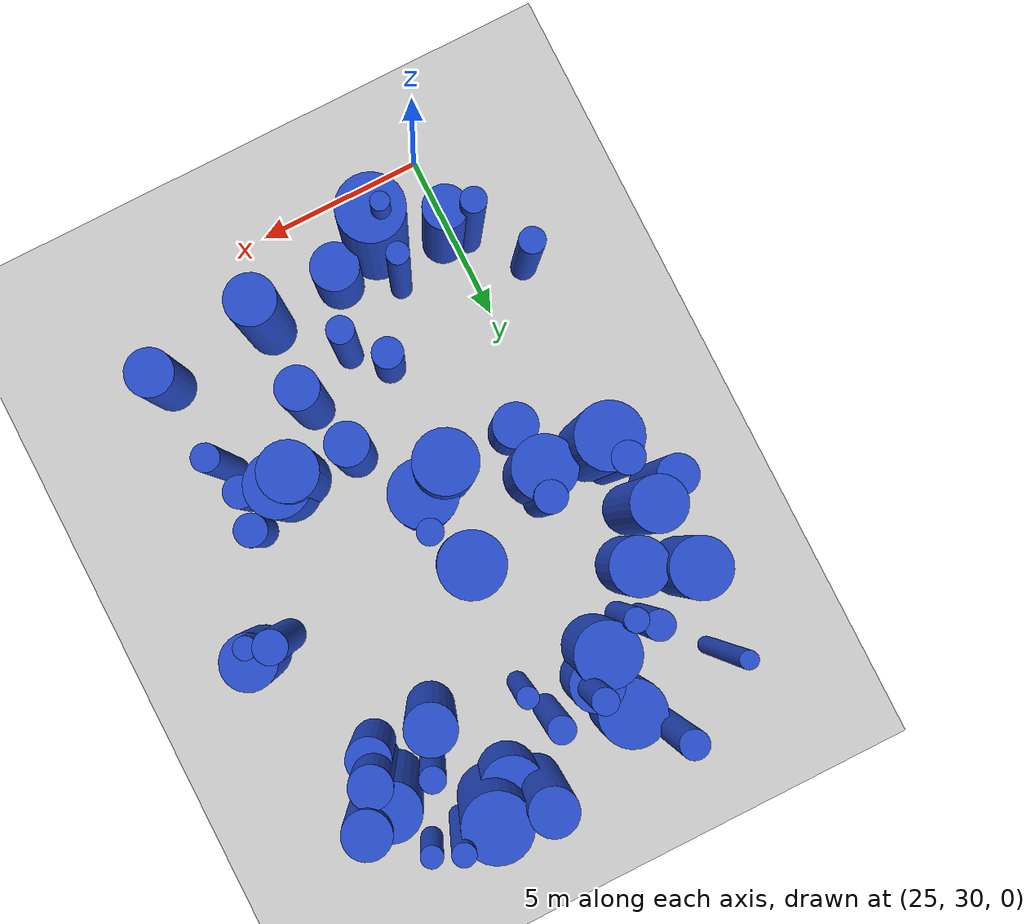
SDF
<sdf version="1.6">
 <world name="default">
  <model name="ground_plane">
   <static>1</static>
   <link name="link">
    <collision name="collision">
     <geometry><plane><normal>0 0 1</normal><size>100 100</size></plane></geometry>
     <surface><friction><ode><mu>100</mu><mu2>50</mu2></ode></friction></surface>
    </collision>
    <visual name="visual">
     <cast_shadows>0</cast_shadows>
     <geometry><plane><normal>0 0 1</normal><size>100 100</size></plane></geometry>
     <material>
      <script><uri>file://media/materials/scripts/gazebo.material</uri><name>Gazebo/Grey</name></script>
     </material>
    </visual>
   </link>
  </model>
  <model name="1">
   <static>0</static>
   <link name="link">
    <inertial>
     <mass>2</mass>
     <inertia><ixx>3.78778</ixx><ixy>0</ixy><ixz>0</ixz><iyy>3.78778</iyy><iyz>0</iyz><izz>0.35692</izz></inertia>
    </inertial>
    <collision name="collision">
     <geometry><cylinder><length>4.65359</length><radius>0.597428</radius></cylinder></geometry>
     <surface><contact><collide_without_contact>1</collide_without_contact></contact></surface>
    </collision>
    <visual name="visual">
     <geometry><cylinder><length>4.65359</length><radius>0.597428</radius></cylinder></geometry>
     <material>
      <script><uri>file://media/materials/scripts/gazebo.material</uri><name>Gazebo/Blue</name></script>
     </material>
    </visual>
    <gravity>0</gravity>
   </link>
   <pose>30.9437 35.2466 2.3268 0 -0 0</pose>
  </model>
  <model name="11">
   <static>0</static>
   <link name="link">
    <inertial>
     <mass>2</mass>
     <inertia><ixx>1.8509</ixx><ixy>0</ixy><ixz>0</ixz><iyy>1.8509</iyy><iyz>0</iyz><izz>0.122377</izz></inertia>
    </inertial>
    <collision name="collision">
     <geometry><cylinder><length>3.27693</length><radius>0.349825</radius></cylinder></geometry>
     <surface><contact><collide_without_contact>1</collide_without_contact></contact></surface>
    </collision>
    <visual name="visual">
     <geometry><cylinder><length>3.27693</length><radius>0.349825</radius></cylinder></geometry>
     <material>
      <script><uri>file://media/materials/scripts/gazebo.material</uri><name>Gazebo/Blue</name></script>
     </material>
    </visual>
    <gravity>0</gravity>
   </link>
   <pose>25.7147 44.6037 1.63846 0 -0 0</pose>
  </model>
  <model name="14">
   <static>0</static>
   <link name="link">
    <inertial>
     <mass>2</mass>
     <inertia><ixx>3.82852</ixx><ixy>0</ixy><ixz>0</ixz><iyy>3.82852</iyy><iyz>0</iyz><izz>0.125875</izz></inertia>
    </inertial>
    <collision name="collision">
     <geometry><cylinder><length>4.75326</length><radius>0.354788</radius></cylinder></geometry>
     <surface><contact><collide_without_contact>1</collide_without_contact></contact></surface>
    </collision>
    <visual name="visual">
     <geometry><cylinder><length>4.75326</length><radius>0.354788</radius></cylinder></geometry>
     <material>
      <script><uri>file://media/materials/scripts/gazebo.material</uri><name>Gazebo/Blue</name></script>
     </material>
    </visual>
    <gravity>0</gravity>
   </link>
   <pose>32.3125 45.6475 2.37663 0 -0 0</pose>
  </model>
  <model name="17">
   <static>0</static>
   <link name="link">
    <inertial>
     <mass>2</mass>
     <inertia><ixx>4.11336</ixx><ixy>0</ixy><ixz>0</ixz><iyy>4.11336</iyy><iyz>0</iyz><izz>0.443854</izz></inertia>
    </inertial>
    <collision name="collision">
     <geometry><cylinder><length>4.83204</length><radius>0.666223</radius></cylinder></geometry>
     <surface><contact><collide_without_contact>1</collide_without_contact></contact></surface>
    </collision>
    <visual name="visual">
     <geometry><cylinder><length>4.83204</length><radius>0.666223</radius></cylinder></geometry>
     <material>
      <script><uri>file://media/materials/scripts/gazebo.material</uri><name>Gazebo/Blue</name></script>
     </material>
    </visual>
    <gravity>0</gravity>
   </link>
   <pose>34.3973 46.1199 2.41602 0 -0 0</pose>
  </model>
  <model name="22">
   <static>0</static>
   <link name="link">
    <inertial>
     <mass>2</mass>
     <inertia><ixx>1.74504</ixx><ixy>0</ixy><ixz>0</ixz><iyy>1.74504</iyy><iyz>0</iyz><izz>0.480682</izz></inertia>
    </inertial>
    <collision name="collision">
     <geometry><cylinder><length>3.00469</length><radius>0.693313</radius></cylinder></geometry>
     <surface><contact><collide_without_contact>1</collide_without_contact></contact></surface>
    </collision>
    <visual name="visual">
     <geometry><cylinder><length>3.00469</length><radius>0.693313</radius></cylinder></geometry>
     <material>
      <script><uri>file://media/materials/scripts/gazebo.material</uri><name>Gazebo/Blue</name></script>
     </material>
    </visual>
    <gravity>0</gravity>
   </link>
   <pose>34.3942 32.773 1.50235 0 -0 0</pose>
  </model>
  <model name="25">
   <static>0</static>
   <link name="link">
    <inertial>
     <mass>2</mass>
     <inertia><ixx>2.7316</ixx><ixy>0</ixy><ixz>0</ixz><iyy>2.7316</iyy><iyz>0</iyz><izz>0.105322</izz></inertia>
    </inertial>
    <collision name="collision">
     <geometry><cylinder><length>4.00919</length><radius>0.324534</radius></cylinder></geometry>
     <surface><contact><collide_without_contact>1</collide_without_contact></contact></surface>
    </collision>
    <visual name="visual">
     <geometry><cylinder><length>4.00919</length><radius>0.324534</radius></cylinder></geometry>
     <material>
      <script><uri>file://media/materials/scripts/gazebo.material</uri><name>Gazebo/Blue</name></script>
     </material>
    </visual>
    <gravity>0</gravity>
   </link>
   <pose>35.1952 40.577 2.0046 0 -0 0</pose>
  </model>
  <model name="35">
   <static>0</static>
   <link name="link">
    <inertial>
     <mass>2</mass>
     <inertia><ixx>3.99285</ixx><ixy>0</ixy><ixz>0</ixz><iyy>3.99285</iyy><iyz>0</iyz><izz>0.131146</izz></inertia>
    </inertial>
    <collision name="collision">
     <geometry><cylinder><length>4.85424</length><radius>0.36214</radius></cylinder></geometry>
     <surface><contact><collide_without_contact>1</collide_without_contact></contact></surface>
    </collision>
    <visual name="visual">
     <geometry><cylinder><length>4.85424</length><radius>0.36214</radius></cylinder></geometry>
     <material>
      <script><uri>file://media/materials/scripts/gazebo.material</uri><name>Gazebo/Blue</name></script>
     </material>
    </visual>
    <gravity>0</gravity>
   </link>
   <pose>27.5562 45.8459 2.42712 0 -0 0</pose>
  </model>
  <model name="39">
   <static>0</static>
   <link name="link">
    <inertial>
     <mass>2</mass>
     <inertia><ixx>1.87707</ixx><ixy>0</ixy><ixz>0</ixz><iyy>1.87707</iyy><iyz>0</iyz><izz>0.143575</izz></inertia>
    </inertial>
    <collision name="collision">
     <geometry><cylinder><length>3.29115</length><radius>0.378913</radius></cylinder></geometry>
     <surface><contact><collide_without_contact>1</collide_without_contact></contact></surface>
    </collision>
    <visual name="visual">
     <geometry><cylinder><length>3.29115</length><radius>0.378913</radius></cylinder></geometry>
     <material>
      <script><uri>file://media/materials/scripts/gazebo.material</uri><name>Gazebo/Blue</name></script>
     </material>
    </visual>
    <gravity>0</gravity>
   </link>
   <pose>29.5533 40.0496 1.64558 0 -0 0</pose>
  </model>
  <model name="42">
   <static>0</static>
   <link name="link">
    <inertial>
     <mass>2</mass>
     <inertia><ixx>3.1498</ixx><ixy>0</ixy><ixz>0</ixz><iyy>3.1498</iyy><iyz>0</iyz><izz>0.22395</izz></inertia>
    </inertial>
    <collision name="collision">
     <geometry><cylinder><length>4.26931</length><radius>0.473233</radius></cylinder></geometry>
     <surface><contact><collide_without_contact>1</collide_without_contact></contact></surface>
    </collision>
    <visual name="visual">
     <geometry><cylinder><length>4.26931</length><radius>0.473233</radius></cylinder></geometry>
     <material>
      <script><uri>file://media/materials/scripts/gazebo.material</uri><name>Gazebo/Blue</name></script>
     </material>
    </visual>
    <gravity>0</gravity>
   </link>
   <pose>34.5611 40.8487 2.13465 0 -0 0</pose>
  </model>
  <model name="46">
   <static>0</static>
   <link name="link">
    <inertial>
     <mass>2</mass>
     <inertia><ixx>1.08337</ixx><ixy>0</ixy><ixz>0</ixz><iyy>1.08337</iyy><iyz>0</iyz><izz>0.431223</izz></inertia>
    </inertial>
    <collision name="collision">
     <geometry><cylinder><length>2.28179</length><radius>0.656676</radius></cylinder></geometry>
     <surface><contact><collide_without_contact>1</collide_without_contact></contact></surface>
    </collision>
    <visual name="visual">
     <geometry><cylinder><length>2.28179</length><radius>0.656676</radius></cylinder></geometry>
     <material>
      <script><uri>file://media/materials/scripts/gazebo.material</uri><name>Gazebo/Blue</name></script>
     </material>
    </visual>
    <gravity>0</gravity>
   </link>
   <pose>26.1184 38.4737 1.14089 0 -0 0</pose>
  </model>
  <model name="51">
   <static>0</static>
   <link name="link">
    <inertial>
     <mass>2</mass>
     <inertia><ixx>2.12897</ixx><ixy>0</ixy><ixz>0</ixz><iyy>2.12897</iyy><iyz>0</iyz><izz>0.215485</izz></inertia>
    </inertial>
    <collision name="collision">
     <geometry><cylinder><length>3.48244</length><radius>0.464204</radius></cylinder></geometry>
     <surface><contact><collide_without_contact>1</collide_without_contact></contact></surface>
    </collision>
    <visual name="visual">
     <geometry><cylinder><length>3.48244</length><radius>0.464204</radius></cylinder></geometry>
     <material>
      <script><uri>file://media/materials/scripts/gazebo.material</uri><name>Gazebo/Blue</name></script>
     </material>
    </visual>
    <gravity>0</gravity>
   </link>
   <pose>26.2759 40.6636 1.74122 0 -0 0</pose>
  </model>
  <model name="67">
   <static>0</static>
   <link name="link">
    <inertial>
     <mass>2</mass>
     <inertia><ixx>3.78893</ixx><ixy>0</ixy><ixz>0</ixz><iyy>3.78893</iyy><iyz>0</iyz><izz>0.594463</izz></inertia>
    </inertial>
    <collision name="collision">
     <geometry><cylinder><length>4.57713</length><radius>0.771014</radius></cylinder></geometry>
     <surface><contact><collide_without_contact>1</collide_without_contact></contact></surface>
    </collision>
    <visual name="visual">
     <geometry><cylinder><length>4.57713</length><radius>0.771014</radius></cylinder></geometry>
     <material>
      <script><uri>file://media/materials/scripts/gazebo.material</uri><name>Gazebo/Blue</name></script>
     </material>
    </visual>
    <gravity>0</gravity>
   </link>
   <pose>24.0154 42.051 2.28857 0 -0 0</pose>
  </model>
  <model name="71">
   <static>0</static>
   <link name="link">
    <inertial>
     <mass>2</mass>
     <inertia><ixx>3.39926</ixx><ixy>0</ixy><ixz>0</ixz><iyy>3.39926</iyy><iyz>0</iyz><izz>0.20815</izz></inertia>
    </inertial>
    <collision name="collision">
     <geometry><cylinder><length>4.44647</length><radius>0.456234</radius></cylinder></geometry>
     <surface><contact><collide_without_contact>1</collide_without_contact></contact></surface>
    </collision>
    <visual name="visual">
     <geometry><cylinder><length>4.44647</length><radius>0.456234</radius></cylinder></geometry>
     <material>
      <script><uri>file://media/materials/scripts/gazebo.material</uri><name>Gazebo/Blue</name></script>
     </material>
    </visual>
    <gravity>0</gravity>
   </link>
   <pose>24.1535 40.6533 2.22323 0 -0 0</pose>
  </model>
  <model name="74">
   <static>0</static>
   <link name="link">
    <inertial>
     <mass>2</mass>
     <inertia><ixx>2.79138</ixx><ixy>0</ixy><ixz>0</ixz><iyy>2.79138</iyy><iyz>0</iyz><izz>0.102118</izz></inertia>
    </inertial>
    <collision name="collision">
     <geometry><cylinder><length>4.05487</length><radius>0.319558</radius></cylinder></geometry>
     <surface><contact><collide_without_contact>1</collide_without_contact></contact></surface>
    </collision>
    <visual name="visual">
     <geometry><cylinder><length>4.05487</length><radius>0.319558</radius></cylinder></geometry>
     <material>
      <script><uri>file://media/materials/scripts/gazebo.material</uri><name>Gazebo/Blue</name></script>
     </material>
    </visual>
    <gravity>0</gravity>
   </link>
   <pose>27.024 33.1538 2.02743 0 -0 0</pose>
  </model>
  <model name="82">
   <static>0</static>
   <link name="link">
    <inertial>
     <mass>2</mass>
     <inertia><ixx>3.87551</ixx><ixy>0</ixy><ixz>0</ixz><iyy>3.87551</iyy><iyz>0</iyz><izz>0.350834</izz></inertia>
    </inertial>
    <collision name="collision">
     <geometry><cylinder><length>4.71175</length><radius>0.592312</radius></cylinder></geometry>
     <surface><contact><collide_without_contact>1</collide_without_contact></contact></surface>
    </collision>
    <visual name="visual">
     <geometry><cylinder><length>4.71175</length><radius>0.592312</radius></cylinder></geometry>
     <material>
      <script><uri>file://media/materials/scripts/gazebo.material</uri><name>Gazebo/Blue</name></script>
     </material>
    </visual>
    <gravity>0</gravity>
   </link>
   <pose>33.8019 45.1243 2.35587 0 -0 0</pose>
  </model>
  <model name="87">
   <static>0</static>
   <link name="link">
    <inertial>
     <mass>2</mass>
     <inertia><ixx>3.09626</ixx><ixy>0</ixy><ixz>0</ixz><iyy>3.09626</iyy><iyz>0</iyz><izz>0.107735</izz></inertia>
    </inertial>
    <collision name="collision">
     <geometry><cylinder><length>4.27251</length><radius>0.32823</radius></cylinder></geometry>
     <surface><contact><collide_without_contact>1</collide_without_contact></contact></surface>
    </collision>
    <visual name="visual">
     <geometry><cylinder><length>4.27251</length><radius>0.32823</radius></cylinder></geometry>
     <material>
      <script><uri>file://media/materials/scripts/gazebo.material</uri><name>Gazebo/Blue</name></script>
     </material>
    </visual>
    <gravity>0</gravity>
   </link>
   <pose>32.4923 47.7909 2.13626 0 -0 0</pose>
  </model>
  <model name="89">
   <static>0</static>
   <link name="link">
    <inertial>
     <mass>2</mass>
     <inertia><ixx>2.83176</ixx><ixy>0</ixy><ixz>0</ixz><iyy>2.83176</iyy><iyz>0</iyz><izz>0.149114</izz></inertia>
    </inertial>
    <collision name="collision">
     <geometry><cylinder><length>4.06733</length><radius>0.386152</radius></cylinder></geometry>
     <surface><contact><collide_without_contact>1</collide_without_contact></contact></surface>
    </collision>
    <visual name="visual">
     <geometry><cylinder><length>4.06733</length><radius>0.386152</radius></cylinder></geometry>
     <material>
      <script><uri>file://media/materials/scripts/gazebo.material</uri><name>Gazebo/Blue</name></script>
     </material>
    </visual>
    <gravity>0</gravity>
   </link>
   <pose>29.2793 34.287 2.03367 0 -0 0</pose>
  </model>
  <model name="95">
   <static>0</static>
   <link name="link">
    <inertial>
     <mass>2</mass>
     <inertia>
      <ixx>0.985771</ixx>
      <ixy>0</ixy>
      <ixz>0</ixz>
      <iyy>0.985771</iyy>
      <iyz>0</iyz>
      <izz>0.233893</izz>
     </inertia>
    </inertial>
    <collision name="collision">
     <geometry><cylinder><length>2.28319</length><radius>0.483625</radius></cylinder></geometry>
     <surface><contact><collide_without_contact>1</collide_without_contact></contact></surface>
    </collision>
    <visual name="visual">
     <geometry><cylinder><length>2.28319</length><radius>0.483625</radius></cylinder></geometry>
     <material>
      <script><uri>file://media/materials/scripts/gazebo.material</uri><name>Gazebo/Blue</name></script>
     </material>
    </visual>
    <gravity>0</gravity>
   </link>
   <pose>33.9366 37.7681 1.14159 0 -0 0</pose>
  </model>
  <model name="133">
   <static>0</static>
   <link name="link">
    <inertial>
     <mass>2</mass>
     <inertia><ixx>3.4341</ixx><ixy>0</ixy><ixz>0</ixz><iyy>3.4341</iyy><iyz>0</iyz><izz>0.510052</izz></inertia>
    </inertial>
    <collision name="collision">
     <geometry><cylinder><length>4.36743</length><radius>0.714179</radius></cylinder></geometry>
     <surface><contact><collide_without_contact>1</collide_without_contact></contact></surface>
    </collision>
    <visual name="visual">
     <geometry><cylinder><length>4.36743</length><radius>0.714179</radius></cylinder></geometry>
     <material>
      <script><uri>file://media/materials/scripts/gazebo.material</uri><name>Gazebo/Blue</name></script>
     </material>
    </visual>
    <gravity>0</gravity>
   </link>
   <pose>31.014 32.5884 2.18371 0 -0 0</pose>
  </model>
  <model name="135">
   <static>0</static>
   <link name="link">
    <inertial>
     <mass>2</mass>
     <inertia><ixx>3.2239</ixx><ixy>0</ixy><ixz>0</ixz><iyy>3.2239</iyy><iyz>0</iyz><izz>0.913912</izz></inertia>
    </inertial>
    <collision name="collision">
     <geometry><cylinder><length>4.07451</length><radius>0.955988</radius></cylinder></geometry>
     <surface><contact><collide_without_contact>1</collide_without_contact></contact></surface>
    </collision>
    <visual name="visual">
     <geometry><cylinder><length>4.07451</length><radius>0.955988</radius></cylinder></geometry>
     <material>
      <script><uri>file://media/materials/scripts/gazebo.material</uri><name>Gazebo/Blue</name></script>
     </material>
    </visual>
    <gravity>0</gravity>
   </link>
   <pose>27.1253 31.7575 2.03726 0 -0 0</pose>
  </model>
  <model name="152">
   <static>0</static>
   <link name="link">
    <inertial>
     <mass>2</mass>
     <inertia><ixx>1.20059</ixx><ixy>0</ixy><ixz>0</ixz><iyy>1.20059</iyy><iyz>0</iyz><izz>0.971857</izz></inertia>
    </inertial>
    <collision name="collision">
     <geometry><cylinder><length>2.07074</length><radius>0.985828</radius></cylinder></geometry>
     <surface><contact><collide_without_contact>1</collide_without_contact></contact></surface>
    </collision>
    <visual name="visual">
     <geometry><cylinder><length>2.07074</length><radius>0.985828</radius></cylinder></geometry>
     <material>
      <script><uri>file://media/materials/scripts/gazebo.material</uri><name>Gazebo/Blue</name></script>
     </material>
    </visual>
    <gravity>0</gravity>
   </link>
   <pose>26.8155 47.0067 1.03537 0 -0 0</pose>
  </model>
  <model name="163">
   <static>0</static>
   <link name="link">
    <inertial>
     <mass>2</mass>
     <inertia><ixx>4.16915</ixx><ixy>0</ixy><ixz>0</ixz><iyy>4.16915</iyy><iyz>0</iyz><izz>0.775676</izz></inertia>
    </inertial>
    <collision name="collision">
     <geometry><cylinder><length>4.76318</length><radius>0.880725</radius></cylinder></geometry>
     <surface><contact><collide_without_contact>1</collide_without_contact></contact></surface>
    </collision>
    <visual name="visual">
     <geometry><cylinder><length>4.76318</length><radius>0.880725</radius></cylinder></geometry>
     <material>
      <script><uri>file://media/materials/scripts/gazebo.material</uri><name>Gazebo/Blue</name></script>
     </material>
    </visual>
    <gravity>0</gravity>
   </link>
   <pose>28.4074 38.6486 2.38159 0 -0 0</pose>
  </model>
  <model name="164">
   <static>0</static>
   <link name="link">
    <inertial>
     <mass>2</mass>
     <inertia><ixx>1.85473</ixx><ixy>0</ixy><ixz>0</ixz><iyy>1.85473</iyy><iyz>0</iyz><izz>0.892902</izz></inertia>
    </inertial>
    <collision name="collision">
     <geometry><cylinder><length>2.90684</length><radius>0.944935</radius></cylinder></geometry>
     <surface><contact><collide_without_contact>1</collide_without_contact></contact></surface>
    </collision>
    <visual name="visual">
     <geometry><cylinder><length>2.90684</length><radius>0.944935</radius></cylinder></geometry>
     <material>
      <script><uri>file://media/materials/scripts/gazebo.material</uri><name>Gazebo/Blue</name></script>
     </material>
    </visual>
    <gravity>0</gravity>
   </link>
   <pose>26.7698 45.1486 1.45342 0 -0 0</pose>
  </model>
  <model name="167">
   <static>0</static>
   <link name="link">
    <inertial>
     <mass>2</mass>
     <inertia><ixx>1.34492</ixx><ixy>0</ixy><ixz>0</ixz><iyy>1.34492</iyy><iyz>0</iyz><izz>0.970128</izz></inertia>
    </inertial>
    <collision name="collision">
     <geometry><cylinder><length>2.27138</length><radius>0.984951</radius></cylinder></geometry>
     <surface><contact><collide_without_contact>1</collide_without_contact></contact></surface>
    </collision>
    <visual name="visual">
     <geometry><cylinder><length>2.27138</length><radius>0.984951</radius></cylinder></geometry>
     <material>
      <script><uri>file://media/materials/scripts/gazebo.material</uri><name>Gazebo/Blue</name></script>
     </material>
    </visual>
    <gravity>0</gravity>
   </link>
   <pose>28.9333 41.3694 1.13569 0 -0 0</pose>
  </model>
  <model name="198">
   <static>0</static>
   <link name="link">
    <inertial>
     <mass>2</mass>
     <inertia><ixx>3.71387</ixx><ixy>0</ixy><ixz>0</ixz><iyy>3.71387</iyy><iyz>0</iyz><izz>0.447245</izz></inertia>
    </inertial>
    <collision name="collision">
     <geometry><cylinder><length>4.57619</length><radius>0.668764</radius></cylinder></geometry>
     <surface><contact><collide_without_contact>1</collide_without_contact></contact></surface>
    </collision>
    <visual name="visual">
     <geometry><cylinder><length>4.57619</length><radius>0.668764</radius></cylinder></geometry>
     <material>
      <script><uri>file://media/materials/scripts/gazebo.material</uri><name>Gazebo/Blue</name></script>
     </material>
    </visual>
    <gravity>0</gravity>
   </link>
   <pose>29.9535 47.7903 2.28809 0 -0 0</pose>
  </model>
  <model name="206">
   <static>0</static>
   <link name="link">
    <inertial>
     <mass>2</mass>
     <inertia><ixx>3.72014</ixx><ixy>0</ixy><ixz>0</ixz><iyy>3.72014</iyy><iyz>0</iyz><izz>0.869376</izz></inertia>
    </inertial>
    <collision name="collision">
     <geometry><cylinder><length>4.4399</length><radius>0.932403</radius></cylinder></geometry>
     <surface><contact><collide_without_contact>1</collide_without_contact></contact></surface>
    </collision>
    <visual name="visual">
     <geometry><cylinder><length>4.4399</length><radius>0.932403</radius></cylinder></geometry>
     <material>
      <script><uri>file://media/materials/scripts/gazebo.material</uri><name>Gazebo/Blue</name></script>
     </material>
    </visual>
    <gravity>0</gravity>
   </link>
   <pose>24.3304 39.9397 2.21995 0 -0 0</pose>
  </model>
  <model name="236">
   <static>0</static>
   <link name="link">
    <inertial>
     <mass>2</mass>
     <inertia><ixx>1.83993</ixx><ixy>0</ixy><ixz>0</ixz><iyy>1.83993</iyy><iyz>0</iyz><izz>0.652607</izz></inertia>
    </inertial>
    <collision name="collision">
     <geometry><cylinder><length>3.0136</length><radius>0.807841</radius></cylinder></geometry>
     <surface><contact><collide_without_contact>1</collide_without_contact></contact></surface>
    </collision>
    <visual name="visual">
     <geometry><cylinder><length>3.0136</length><radius>0.807841</radius></cylinder></geometry>
     <material>
      <script><uri>file://media/materials/scripts/gazebo.material</uri><name>Gazebo/Blue</name></script>
     </material>
    </visual>
    <gravity>0</gravity>
   </link>
   <pose>35.459 40.965 1.5068 0 -0 0</pose>
  </model>
  <model name="237">
   <static>0</static>
   <link name="link">
    <inertial>
     <mass>2</mass>
     <inertia><ixx>3.88565</ixx><ixy>0</ixy><ixz>0</ixz><iyy>3.88565</iyy><iyz>0</iyz><izz>0.069964</izz></inertia>
    </inertial>
    <collision name="collision">
     <geometry><cylinder><length>4.80666</length><radius>0.264507</radius></cylinder></geometry>
     <surface><contact><collide_without_contact>1</collide_without_contact></contact></surface>
    </collision>
    <visual name="visual">
     <geometry><cylinder><length>4.80666</length><radius>0.264507</radius></cylinder></geometry>
     <material>
      <script><uri>file://media/materials/scripts/gazebo.material</uri><name>Gazebo/Blue</name></script>
     </material>
    </visual>
    <gravity>0</gravity>
   </link>
   <pose>26.8976 31.9292 2.40333 0 -0 0</pose>
  </model>
  <model name="260">
   <static>0</static>
   <link name="link">
    <inertial>
     <mass>2</mass>
     <inertia><ixx>1.29858</ixx><ixy>0</ixy><ixz>0</ixz><iyy>1.29858</iyy><iyz>0</iyz><izz>0.805002</izz></inertia>
    </inertial>
    <collision name="collision">
     <geometry><cylinder><length>2.31873</length><radius>0.897219</radius></cylinder></geometry>
     <surface><contact><collide_without_contact>1</collide_without_contact></contact></surface>
    </collision>
    <visual name="visual">
     <geometry><cylinder><length>2.31873</length><radius>0.897219</radius></cylinder></geometry>
     <material>
      <script><uri>file://media/materials/scripts/gazebo.material</uri><name>Gazebo/Blue</name></script>
     </material>
    </visual>
    <gravity>0</gravity>
   </link>
   <pose>30.6795 47.2722 1.15936 0 -0 0</pose>
  </model>
  <model name="265">
   <static>0</static>
   <link name="link">
    <inertial>
     <mass>2</mass>
     <inertia><ixx>1.86369</ixx><ixy>0</ixy><ixz>0</ixz><iyy>1.86369</iyy><iyz>0</iyz><izz>0.986529</izz></inertia>
    </inertial>
    <collision name="collision">
     <geometry><cylinder><length>2.8675</length><radius>0.993242</radius></cylinder></geometry>
     <surface><contact><collide_without_contact>1</collide_without_contact></contact></surface>
    </collision>
    <visual name="visual">
     <geometry><cylinder><length>2.8675</length><radius>0.993242</radius></cylinder></geometry>
     <material>
      <script><uri>file://media/materials/scripts/gazebo.material</uri><name>Gazebo/Blue</name></script>
     </material>
    </visual>
    <gravity>0</gravity>
   </link>
   <pose>29.2502 39.0321 1.43375 0 -0 0</pose>
  </model>
  <model name="271">
   <static>0</static>
   <link name="link">
    <inertial>
     <mass>2</mass>
     <inertia><ixx>1.58894</ixx><ixy>0</ixy><ixz>0</ixz><iyy>1.58894</iyy><iyz>0</iyz><izz>0.147275</izz></inertia>
    </inertial>
    <collision name="collision">
     <geometry><cylinder><length>3.01526</length><radius>0.383765</radius></cylinder></geometry>
     <surface><contact><collide_without_contact>1</collide_without_contact></contact></surface>
    </collision>
    <visual name="visual">
     <geometry><cylinder><length>3.01526</length><radius>0.383765</radius></cylinder></geometry>
     <material>
      <script><uri>file://media/materials/scripts/gazebo.material</uri><name>Gazebo/Blue</name></script>
     </material>
    </visual>
    <gravity>0</gravity>
   </link>
   <pose>23.5076 34.2313 1.50763 0 -0 0</pose>
  </model>
  <model name="277">
   <static>0</static>
   <link name="link">
    <inertial>
     <mass>2</mass>
     <inertia><ixx>1.77319</ixx><ixy>0</ixy><ixz>0</ixz><iyy>1.77319</iyy><iyz>0</iyz><izz>0.791418</izz></inertia>
    </inertial>
    <collision name="collision">
     <geometry><cylinder><length>2.87487</length><radius>0.889617</radius></cylinder></geometry>
     <surface><contact><collide_without_contact>1</collide_without_contact></contact></surface>
    </collision>
    <visual name="visual">
     <geometry><cylinder><length>2.87487</length><radius>0.889617</radius></cylinder></geometry>
     <material>
      <script><uri>file://media/materials/scripts/gazebo.material</uri><name>Gazebo/Blue</name></script>
     </material>
    </visual>
    <gravity>0</gravity>
   </link>
   <pose>23.4573 44.2043 1.43744 0 -0 0</pose>
  </model>
  <model name="279">
   <static>0</static>
   <link name="link">
    <inertial>
     <mass>2</mass>
     <inertia>
      <ixx>2.24784</ixx>
      <ixy>0</ixy>
      <ixz>0</ixz>
      <iyy>2.24784</iyy>
      <iyz>0</iyz>
      <izz>0.0940956</izz>
     </inertia>
    </inertial>
    <collision name="collision">
     <geometry><cylinder><length>3.63383</length><radius>0.30675</radius></cylinder></geometry>
     <surface><contact><collide_without_contact>1</collide_without_contact></contact></surface>
    </collision>
    <visual name="visual">
     <geometry><cylinder><length>3.63383</length><radius>0.30675</radius></cylinder></geometry>
     <material>
      <script><uri>file://media/materials/scripts/gazebo.material</uri><name>Gazebo/Blue</name></script>
     </material>
    </visual>
    <gravity>0</gravity>
   </link>
   <pose>29.2311 45.0731 1.81692 0 -0 0</pose>
  </model>
  <model name="280">
   <static>0</static>
   <link name="link">
    <inertial>
     <mass>2</mass>
     <inertia><ixx>1.86828</ixx><ixy>0</ixy><ixz>0</ixz><iyy>1.86828</iyy><iyz>0</iyz><izz>0.403415</izz></inertia>
    </inertial>
    <collision name="collision">
     <geometry><cylinder><length>3.16219</length><radius>0.635149</radius></cylinder></geometry>
     <surface><contact><collide_without_contact>1</collide_without_contact></contact></surface>
    </collision>
    <visual name="visual">
     <geometry><cylinder><length>3.16219</length><radius>0.635149</radius></cylinder></geometry>
     <material>
      <script><uri>file://media/materials/scripts/gazebo.material</uri><name>Gazebo/Blue</name></script>
     </material>
    </visual>
    <gravity>0</gravity>
   </link>
   <pose>33.7452 44.7117 1.58109 0 -0 0</pose>
  </model>
  <model name="295">
   <static>0</static>
   <link name="link">
    <inertial>
     <mass>2</mass>
     <inertia><ixx>2.25173</ixx><ixy>0</ixy><ixz>0</ixz><iyy>2.25173</iyy><iyz>0</iyz><izz>0.847634</izz></inertia>
    </inertial>
    <collision name="collision">
     <geometry><cylinder><length>3.31172</length><radius>0.92067</radius></cylinder></geometry>
     <surface><contact><collide_without_contact>1</collide_without_contact></contact></surface>
    </collision>
    <visual name="visual">
     <geometry><cylinder><length>3.31172</length><radius>0.92067</radius></cylinder></geometry>
     <material>
      <script><uri>file://media/materials/scripts/gazebo.material</uri><name>Gazebo/Blue</name></script>
     </material>
    </visual>
    <gravity>0</gravity>
   </link>
   <pose>26.0498 39.8987 1.65586 0 -0 0</pose>
  </model>
  <model name="311">
   <static>0</static>
   <link name="link">
    <inertial>
     <mass>2</mass>
     <inertia><ixx>3.80399</ixx><ixy>0</ixy><ixz>0</ixz><iyy>3.80399</iyy><iyz>0</iyz><izz>0.148917</izz></inertia>
    </inertial>
    <collision name="collision">
     <geometry><cylinder><length>4.73045</length><radius>0.385897</radius></cylinder></geometry>
     <surface><contact><collide_without_contact>1</collide_without_contact></contact></surface>
    </collision>
    <visual name="visual">
     <geometry><cylinder><length>4.73045</length><radius>0.385897</radius></cylinder></geometry>
     <material>
      <script><uri>file://media/materials/scripts/gazebo.material</uri><name>Gazebo/Blue</name></script>
     </material>
    </visual>
    <gravity>0</gravity>
   </link>
   <pose>33.8176 35.8009 2.36523 0 -0 0</pose>
  </model>
  <model name="316">
   <static>0</static>
   <link name="link">
    <inertial>
     <mass>2</mass>
     <inertia><ixx>3.37033</ixx><ixy>0</ixy><ixz>0</ixz><iyy>3.37033</iyy><iyz>0</iyz><izz>0.364303</izz></inertia>
    </inertial>
    <collision name="collision">
     <geometry><cylinder><length>4.37368</length><radius>0.603575</radius></cylinder></geometry>
     <surface><contact><collide_without_contact>1</collide_without_contact></contact></surface>
    </collision>
    <visual name="visual">
     <geometry><cylinder><length>4.37368</length><radius>0.603575</radius></cylinder></geometry>
     <material>
      <script><uri>file://media/materials/scripts/gazebo.material</uri><name>Gazebo/Blue</name></script>
     </material>
    </visual>
    <gravity>0</gravity>
   </link>
   <pose>30.4569 37.0731 2.18684 0 -0 0</pose>
  </model>
  <model name="334">
   <static>0</static>
   <link name="link">
    <inertial>
     <mass>2</mass>
     <inertia><ixx>1.46515</ixx><ixy>0</ixy><ixz>0</ixz><iyy>1.46515</iyy><iyz>0</iyz><izz>0.73312</izz></inertia>
    </inertial>
    <collision name="collision">
     <geometry><cylinder><length>2.5674</length><radius>0.856224</radius></cylinder></geometry>
     <surface><contact><collide_without_contact>1</collide_without_contact></contact></surface>
    </collision>
    <visual name="visual">
     <geometry><cylinder><length>2.5674</length><radius>0.856224</radius></cylinder></geometry>
     <material>
      <script><uri>file://media/materials/scripts/gazebo.material</uri><name>Gazebo/Blue</name></script>
     </material>
    </visual>
    <gravity>0</gravity>
   </link>
   <pose>24.8765 43.4521 1.2837 0 -0 0</pose>
  </model>
  <model name="336">
   <static>0</static>
   <link name="link">
    <inertial>
     <mass>2</mass>
     <inertia><ixx>1.17599</ixx><ixy>0</ixy><ixz>0</ixz><iyy>1.17599</iyy><iyz>0</iyz><izz>0.610471</izz></inertia>
    </inertial>
    <collision name="collision">
     <geometry><cylinder><length>2.28572</length><radius>0.781326</radius></cylinder></geometry>
     <surface><contact><collide_without_contact>1</collide_without_contact></contact></surface>
    </collision>
    <visual name="visual">
     <geometry><cylinder><length>2.28572</length><radius>0.781326</radius></cylinder></geometry>
     <material>
      <script><uri>file://media/materials/scripts/gazebo.material</uri><name>Gazebo/Blue</name></script>
     </material>
    </visual>
    <gravity>0</gravity>
   </link>
   <pose>27.3535 45.8376 1.14286 0 -0 0</pose>
  </model>
  <model name="360">
   <static>0</static>
   <link name="link">
    <inertial>
     <mass>2</mass>
     <inertia><ixx>3.1749</ixx><ixy>0</ixy><ixz>0</ixz><iyy>3.1749</iyy><iyz>0</iyz><izz>0.143747</izz></inertia>
    </inertial>
    <collision name="collision">
     <geometry><cylinder><length>4.31487</length><radius>0.37914</radius></cylinder></geometry>
     <surface><contact><collide_without_contact>1</collide_without_contact></contact></surface>
    </collision>
    <visual name="visual">
     <geometry><cylinder><length>4.31487</length><radius>0.37914</radius></cylinder></geometry>
     <material>
      <script><uri>file://media/materials/scripts/gazebo.material</uri><name>Gazebo/Blue</name></script>
     </material>
    </visual>
    <gravity>0</gravity>
   </link>
   <pose>28.834 46.0885 2.15744 0 -0 0</pose>
  </model>
  <model name="365">
   <static>0</static>
   <link name="link">
    <inertial>
     <mass>2</mass>
     <inertia><ixx>3.78457</ixx><ixy>0</ixy><ixz>0</ixz><iyy>3.78457</iyy><iyz>0</iyz><izz>0.628093</izz></inertia>
    </inertial>
    <collision name="collision">
     <geometry><cylinder><length>4.56324</length><radius>0.792523</radius></cylinder></geometry>
     <surface><contact><collide_without_contact>1</collide_without_contact></contact></surface>
    </collision>
    <visual name="visual">
     <geometry><cylinder><length>4.56324</length><radius>0.792523</radius></cylinder></geometry>
     <material>
      <script><uri>file://media/materials/scripts/gazebo.material</uri><name>Gazebo/Blue</name></script>
     </material>
    </visual>
    <gravity>0</gravity>
   </link>
   <pose>33.6136 45.9448 2.28162 0 -0 0</pose>
  </model>
  <model name="395">
   <static>0</static>
   <link name="link">
    <inertial>
     <mass>2</mass>
     <inertia><ixx>3.03828</ixx><ixy>0</ixy><ixz>0</ixz><iyy>3.03828</iyy><iyz>0</iyz><izz>0.323923</izz></inertia>
    </inertial>
    <collision name="collision">
     <geometry><cylinder><length>4.15426</length><radius>0.569143</radius></cylinder></geometry>
     <surface><contact><collide_without_contact>1</collide_without_contact></contact></surface>
    </collision>
    <visual name="visual">
     <geometry><cylinder><length>4.15426</length><radius>0.569143</radius></cylinder></geometry>
     <material>
      <script><uri>file://media/materials/scripts/gazebo.material</uri><name>Gazebo/Blue</name></script>
     </material>
    </visual>
    <gravity>0</gravity>
   </link>
   <pose>23.156 41.6332 2.07713 0 -0 0</pose>
  </model>
  <model name="401">
   <static>0</static>
   <link name="link">
    <inertial>
     <mass>2</mass>
     <inertia>
      <ixx>2.89103</ixx>
      <ixy>0</ixy>
      <ixz>0</ixz>
      <iyy>2.89103</iyy>
      <iyz>0</iyz>
      <izz>0.0678865</izz>
     </inertia>
    </inertial>
    <collision name="collision">
     <geometry><cylinder><length>4.14035</length><radius>0.26055</radius></cylinder></geometry>
     <surface><contact><collide_without_contact>1</collide_without_contact></contact></surface>
    </collision>
    <visual name="visual">
     <geometry><cylinder><length>4.14035</length><radius>0.26055</radius></cylinder></geometry>
     <material>
      <script><uri>file://media/materials/scripts/gazebo.material</uri><name>Gazebo/Blue</name></script>
     </material>
    </visual>
    <gravity>0</gravity>
   </link>
   <pose>23.7835 42.124 2.07018 0 -0 0</pose>
  </model>
  <model name="403">
   <static>0</static>
   <link name="link">
    <inertial>
     <mass>2</mass>
     <inertia><ixx>2.10151</ixx><ixy>0</ixy><ixz>0</ixz><iyy>2.10151</iyy><iyz>0</iyz><izz>0.868528</izz></inertia>
    </inertial>
    <collision name="collision">
     <geometry><cylinder><length>3.16283</length><radius>0.931949</radius></cylinder></geometry>
     <surface><contact><collide_without_contact>1</collide_without_contact></contact></surface>
    </collision>
    <visual name="visual">
     <geometry><cylinder><length>3.16283</length><radius>0.931949</radius></cylinder></geometry>
     <material>
      <script><uri>file://media/materials/scripts/gazebo.material</uri><name>Gazebo/Blue</name></script>
     </material>
    </visual>
    <gravity>0</gravity>
   </link>
   <pose>32.6537 37.0755 1.58141 0 -0 0</pose>
  </model>
  <model name="404">
   <static>0</static>
   <link name="link">
    <inertial>
     <mass>2</mass>
     <inertia><ixx>3.06263</ixx><ixy>0</ixy><ixz>0</ixz><iyy>3.06263</iyy><iyz>0</iyz><izz>0.939128</izz></inertia>
    </inertial>
    <collision name="collision">
     <geometry><cylinder><length>3.94441</length><radius>0.969086</radius></cylinder></geometry>
     <surface><contact><collide_without_contact>1</collide_without_contact></contact></surface>
    </collision>
    <visual name="visual">
     <geometry><cylinder><length>3.94441</length><radius>0.969086</radius></cylinder></geometry>
     <material>
      <script><uri>file://media/materials/scripts/gazebo.material</uri><name>Gazebo/Blue</name></script>
     </material>
    </visual>
    <gravity>0</gravity>
   </link>
   <pose>31.4392 47.6509 1.97221 0 -0 0</pose>
  </model>
  <model name="407">
   <static>0</static>
   <link name="link">
    <inertial>
     <mass>2</mass>
     <inertia><ixx>3.31073</ixx><ixy>0</ixy><ixz>0</ixz><iyy>3.31073</iyy><iyz>0</iyz><izz>0.163602</izz></inertia>
    </inertial>
    <collision name="collision">
     <geometry><cylinder><length>4.40154</length><radius>0.404478</radius></cylinder></geometry>
     <surface><contact><collide_without_contact>1</collide_without_contact></contact></surface>
    </collision>
    <visual name="visual">
     <geometry><cylinder><length>4.40154</length><radius>0.404478</radius></cylinder></geometry>
     <material>
      <script><uri>file://media/materials/scripts/gazebo.material</uri><name>Gazebo/Blue</name></script>
     </material>
    </visual>
    <gravity>0</gravity>
   </link>
   <pose>25.9909 47.9279 2.20077 0 -0 0</pose>
  </model>
  <model name="411">
   <static>0</static>
   <link name="link">
    <inertial>
     <mass>2</mass>
     <inertia>
      <ixx>0.796186</ixx>
      <ixy>0</ixy>
      <ixz>0</ixz>
      <iyy>0.796186</iyy>
      <iyz>0</iyz>
      <izz>0.107698</izz>
     </inertia>
    </inertial>
    <collision name="collision">
     <geometry><cylinder><length>2.11046</length><radius>0.328173</radius></cylinder></geometry>
     <surface><contact><collide_without_contact>1</collide_without_contact></contact></surface>
    </collision>
    <visual name="visual">
     <geometry><cylinder><length>2.11046</length><radius>0.328173</radius></cylinder></geometry>
     <material>
      <script><uri>file://media/materials/scripts/gazebo.material</uri><name>Gazebo/Blue</name></script>
     </material>
    </visual>
    <gravity>0</gravity>
   </link>
   <pose>33.508 47.9841 1.05523 0 -0 0</pose>
  </model>
  <model name="413">
   <static>0</static>
   <link name="link">
    <inertial>
     <mass>2</mass>
     <inertia><ixx>1.15901</ixx><ixy>0</ixy><ixz>0</ixz><iyy>1.15901</iyy><iyz>0</iyz><izz>0.490146</izz></inertia>
    </inertial>
    <collision name="collision">
     <geometry><cylinder><length>2.34172</length><radius>0.700104</radius></cylinder></geometry>
     <surface><contact><collide_without_contact>1</collide_without_contact></contact></surface>
    </collision>
    <visual name="visual">
     <geometry><cylinder><length>2.34172</length><radius>0.700104</radius></cylinder></geometry>
     <material>
      <script><uri>file://media/materials/scripts/gazebo.material</uri><name>Gazebo/Blue</name></script>
     </material>
    </visual>
    <gravity>0</gravity>
   </link>
   <pose>28.5992 32.2865 1.17086 0 -0 0</pose>
  </model>
  <model name="414">
   <static>0</static>
   <link name="link">
    <inertial>
     <mass>2</mass>
     <inertia><ixx>3.69177</ixx><ixy>0</ixy><ixz>0</ixz><iyy>3.69177</iyy><iyz>0</iyz><izz>0.504839</izz></inertia>
    </inertial>
    <collision name="collision">
     <geometry><cylinder><length>4.5427</length><radius>0.71052</radius></cylinder></geometry>
     <surface><contact><collide_without_contact>1</collide_without_contact></contact></surface>
    </collision>
    <visual name="visual">
     <geometry><cylinder><length>4.5427</length><radius>0.71052</radius></cylinder></geometry>
     <material>
      <script><uri>file://media/materials/scripts/gazebo.material</uri><name>Gazebo/Blue</name></script>
     </material>
    </visual>
    <gravity>0</gravity>
   </link>
   <pose>31.8117 44.5432 2.27135 0 -0 0</pose>
  </model>
  <model name="422">
   <static>0</static>
   <link name="link">
    <inertial>
     <mass>2</mass>
     <inertia><ixx>2.75184</ixx><ixy>0</ixy><ixz>0</ixz><iyy>2.75184</iyy><iyz>0</iyz><izz>0.132584</izz></inertia>
    </inertial>
    <collision name="collision">
     <geometry><cylinder><length>4.01414</length><radius>0.36412</radius></cylinder></geometry>
     <surface><contact><collide_without_contact>1</collide_without_contact></contact></surface>
    </collision>
    <visual name="visual">
     <geometry><cylinder><length>4.01414</length><radius>0.36412</radius></cylinder></geometry>
     <material>
      <script><uri>file://media/materials/scripts/gazebo.material</uri><name>Gazebo/Blue</name></script>
     </material>
    </visual>
    <gravity>0</gravity>
   </link>
   <pose>24.6033 32.7802 2.00707 0 -0 0</pose>
  </model>
  <model name="431">
   <static>0</static>
   <link name="link">
    <inertial>
     <mass>2</mass>
     <inertia><ixx>2.53883</ixx><ixy>0</ixy><ixz>0</ixz><iyy>2.53883</iyy><iyz>0</iyz><izz>0.732682</izz></inertia>
    </inertial>
    <collision name="collision">
     <geometry><cylinder><length>3.6104</length><radius>0.855969</radius></cylinder></geometry>
     <surface><contact><collide_without_contact>1</collide_without_contact></contact></surface>
    </collision>
    <visual name="visual">
     <geometry><cylinder><length>3.6104</length><radius>0.855969</radius></cylinder></geometry>
     <material>
      <script><uri>file://media/materials/scripts/gazebo.material</uri><name>Gazebo/Blue</name></script>
     </material>
    </visual>
    <gravity>0</gravity>
   </link>
   <pose>32.1985 36.9286 1.8052 0 -0 0</pose>
  </model>
  <model name="444">
   <static>0</static>
   <link name="link">
    <inertial>
     <mass>2</mass>
     <inertia>
      <ixx>3.46699</ixx>
      <ixy>0</ixy>
      <ixz>0</ixz>
      <iyy>3.46699</iyy>
      <iyz>0</iyz>
      <izz>0.0659828</izz>
     </inertia>
    </inertial>
    <collision name="collision">
     <geometry><cylinder><length>4.53916</length><radius>0.256871</radius></cylinder></geometry>
     <surface><contact><collide_without_contact>1</collide_without_contact></contact></surface>
    </collision>
    <visual name="visual">
     <geometry><cylinder><length>4.53916</length><radius>0.256871</radius></cylinder></geometry>
     <material>
      <script><uri>file://media/materials/scripts/gazebo.material</uri><name>Gazebo/Blue</name></script>
     </material>
    </visual>
    <gravity>0</gravity>
   </link>
   <pose>23.7943 46.6186 2.26958 0 -0 0</pose>
  </model>
  <model name="456">
   <static>0</static>
   <link name="link">
    <inertial>
     <mass>2</mass>
     <inertia><ixx>1.30416</ixx><ixy>0</ixy><ixz>0</ixz><iyy>1.30416</iyy><iyz>0</iyz><izz>0.2043</izz></inertia>
    </inertial>
    <collision name="collision">
     <geometry><cylinder><length>2.68552</length><radius>0.451995</radius></cylinder></geometry>
     <surface><contact><collide_without_contact>1</collide_without_contact></contact></surface>
    </collision>
    <visual name="visual">
     <geometry><cylinder><length>2.68552</length><radius>0.451995</radius></cylinder></geometry>
     <material>
      <script><uri>file://media/materials/scripts/gazebo.material</uri><name>Gazebo/Blue</name></script>
     </material>
    </visual>
    <gravity>0</gravity>
   </link>
   <pose>28.3844 35.148 1.34276 0 -0 0</pose>
  </model>
  <model name="482">
   <static>0</static>
   <link name="link">
    <inertial>
     <mass>2</mass>
     <inertia><ixx>1.04639</ixx><ixy>0</ixy><ixz>0</ixz><iyy>1.04639</iyy><iyz>0</iyz><izz>0.225566</izz></inertia>
    </inertial>
    <collision name="collision">
     <geometry><cylinder><length>2.36678</length><radius>0.474937</radius></cylinder></geometry>
     <surface><contact><collide_without_contact>1</collide_without_contact></contact></surface>
    </collision>
    <visual name="visual">
     <geometry><cylinder><length>2.36678</length><radius>0.474937</radius></cylinder></geometry>
     <material>
      <script><uri>file://media/materials/scripts/gazebo.material</uri><name>Gazebo/Blue</name></script>
     </material>
    </visual>
    <gravity>0</gravity>
   </link>
   <pose>33.7282 36.6924 1.18339 0 -0 0</pose>
  </model>
  <model name="489">
   <static>0</static>
   <link name="link">
    <inertial>
     <mass>2</mass>
     <inertia><ixx>1.74536</ixx><ixy>0</ixy><ixz>0</ixz><iyy>1.74536</iyy><iyz>0</iyz><izz>0.190322</izz></inertia>
    </inertial>
    <collision name="collision">
     <geometry><cylinder><length>3.14661</length><radius>0.436259</radius></cylinder></geometry>
     <surface><contact><collide_without_contact>1</collide_without_contact></contact></surface>
    </collision>
    <visual name="visual">
     <geometry><cylinder><length>3.14661</length><radius>0.436259</radius></cylinder></geometry>
     <material>
      <script><uri>file://media/materials/scripts/gazebo.material</uri><name>Gazebo/Blue</name></script>
     </material>
    </visual>
    <gravity>0</gravity>
   </link>
   <pose>25.2053 45.0254 1.57331 0 -0 0</pose>
  </model>
  <model name="494">
   <static>0</static>
   <link name="link">
    <inertial>
     <mass>2</mass>
     <inertia><ixx>2.3195</ixx><ixy>0</ixy><ixz>0</ixz><iyy>2.3195</iyy><iyz>0</iyz><izz>0.397314</izz></inertia>
    </inertial>
    <collision name="collision">
     <geometry><cylinder><length>3.56722</length><radius>0.630328</radius></cylinder></geometry>
     <surface><contact><collide_without_contact>1</collide_without_contact></contact></surface>
    </collision>
    <visual name="visual">
     <geometry><cylinder><length>3.56722</length><radius>0.630328</radius></cylinder></geometry>
     <material>
      <script><uri>file://media/materials/scripts/gazebo.material</uri><name>Gazebo/Blue</name></script>
     </material>
    </visual>
    <gravity>0</gravity>
   </link>
   <pose>25.292 32.4989 1.78361 0 -0 0</pose>
  </model>
 </world>
</sdf>
